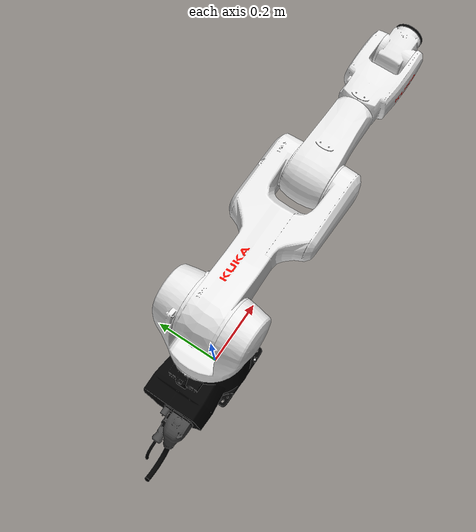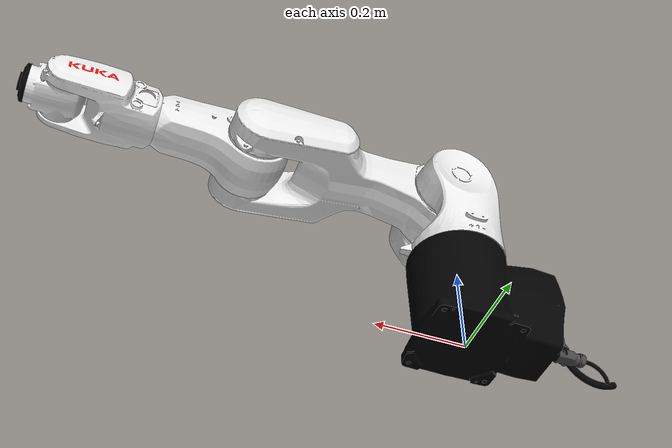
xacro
<?xml version="1.0" encoding="UTF-8"?>
<robot xmlns:xacro="http://ros.org/wiki/xacro" name="kr6_r900_2">
  <!-- Import macro files  -->
  <xacro:include filename="$(find kuka_agilus_support)/urdf/kr6_r900_2_macro.xacro"/>
  <xacro:include filename="$(find kuka_agilus_support)/urdf/kr_agilus_ros2_control_macro.xacro"/>
  <!-- Read additional arguments  -->
  <xacro:arg name="driver_version" default="rsi_only"/>
  <xacro:arg name="mode" default="hardware"/>
  <xacro:arg name="gpio_config" default=""/>
  <xacro:arg name="roundtrip_time" default="0"/>
  <xacro:arg name="client_ip" default="0.0.0.0"/>
  <xacro:arg name="client_port" default="59152"/>
  <xacro:arg name="mxa_client_port" default="1337"/>
  <xacro:arg name="controller_ip" default="0.0.0.0"/>
  <xacro:arg name="verify_robot_model" default="true"/>
  <xacro:arg name="prefix" default=""/>
  <xacro:arg name="x" default="0"/>
  <xacro:arg name="y" default="0"/>
  <xacro:arg name="z" default="0"/>
  <xacro:arg name="roll" default="0"/>
  <xacro:arg name="pitch" default="0"/>
  <xacro:arg name="yaw" default="0"/>
  <xacro:arg name="rsi_xml_config_file" default=""/>
  <xacro:kuka_agilus_ros2_control name="$(arg prefix)kr6_r900_2" driver_version="$(arg driver_version)" client_ip="$(arg client_ip)" client_port="$(arg client_port)" mxa_client_port="$(arg mxa_client_port)" controller_ip="$(arg controller_ip)" prefix="$(arg prefix)" mode="$(arg mode)" gpio_config="$(arg gpio_config)" roundtrip_time="$(arg roundtrip_time)" verify_robot_model="$(arg verify_robot_model)" rsi_xml_config_file="$(arg rsi_xml_config_file)">
    <ext_axes_ros2_control_joints/>
  </xacro:kuka_agilus_ros2_control>
  <!-- world link -->
  <link name="world"/>
  <!-- robot links, joints -->
  <xacro:kuka_kr6_r900_2_robot prefix="$(arg prefix)" package_name="kuka_agilus_support"/>
  <!-- default world - base_link joint -->
  <joint name="$(arg prefix)world-base_link" type="fixed">
    <parent link="world"/>
    <child link="$(arg prefix)base_link"/>
    <origin xyz="$(arg x) $(arg y) $(arg z)" rpy="$(arg roll) $(arg pitch) $(arg yaw)"/>
  </joint>
</robot>

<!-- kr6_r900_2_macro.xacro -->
<robot xmlns:xacro="http://www.ros.org/wiki/xacro" name="kr6_r900_2">
  <xacro:macro name="kuka_kr6_r900_2_robot" params="prefix package_name">
    <link name="${prefix}base"/>
    <link name="${prefix}base_link">
      <collision>
        <geometry>
          <mesh filename="package://${package_name}/meshes/kr6_r900_2/collision/base_link.stl"/>
        </geometry>
        <origin rpy="0.0 0.0 0.0" xyz="0.0 0.0 0.0"/>
      </collision>
      <inertial>
        <inertia ixx="0.1621" ixy="0.0" ixz="0.0" iyy="0.1088" iyz="0.0" izz="0.1846"/>
        <mass value="16.916"/>
        <origin rpy="1.6166 -1.2213 3.1003" xyz="-0.0371 0.0 0.1086"/>
      </inertial>
      <visual>
        <geometry>
          <mesh filename="package://${package_name}/meshes/kr6_r900_2/visual/base_link.dae"/>
        </geometry>
        <origin rpy="0.0 0.0 0.0" xyz="0.0 0.0 0.0"/>
      </visual>
    </link>
    <link name="${prefix}flange"/>
    <link name="${prefix}link_1">
      <collision>
        <geometry>
          <mesh filename="package://${package_name}/meshes/kr6_r900_2/collision/link_1.stl"/>
        </geometry>
        <origin rpy="-3.1415853071795867 0.0 -0.0" xyz="0.0 -1.528053322981866e-06 0.20799999999438715"/>
      </collision>
      <inertial>
        <inertia ixx="0.0741" ixy="0.0" ixz="0.0" iyy="0.089" iyz="0.0" izz="0.1104"/>
        <mass value="8.416"/>
        <origin rpy="1.3045 -0.9429 -1.4227" xyz="0.0064 -0.0163 -0.1066"/>
      </inertial>
      <visual>
        <geometry>
          <mesh filename="package://${package_name}/meshes/kr6_r900_2/visual/link_1.dae"/>
        </geometry>
        <origin rpy="-3.1415853071795867 0.0 -0.0" xyz="0.0 -1.528053322981866e-06 0.20799999999438715"/>
      </visual>
    </link>
    <link name="${prefix}link_2">
      <collision>
        <geometry>
          <mesh filename="package://${package_name}/meshes/kr6_r900_2/collision/link_2.stl"/>
        </geometry>
        <origin rpy="1.5708 4.70197740325743e-38 1.5707963267948966" xyz="-0.39999966683759874 -0.024999999999999977 -0.09069994122810648"/>
      </collision>
      <inertial>
        <inertia ixx="0.5483" ixy="0.0" ixz="0.0" iyy="0.0872" iyz="0.0" izz="0.5885"/>
        <mass value="16.7929"/>
        <origin rpy="1.8411 -1.5374 -0.2834" xyz="0.1474 -0.0045 -0.0737"/>
      </inertial>
      <visual>
        <geometry>
          <mesh filename="package://${package_name}/meshes/kr6_r900_2/visual/link_2.dae"/>
        </geometry>
        <origin rpy="1.5708 4.70197740325743e-38 1.5707963267948966" xyz="-0.39999966683759874 -0.024999999999999977 -0.09069994122810648"/>
      </visual>
    </link>
    <link name="${prefix}link_3">
      <collision>
        <geometry>
          <mesh filename="package://${package_name}/meshes/kr6_r900_2/collision/link_3.stl"/>
        </geometry>
        <origin rpy="1.5708 -0.0 -0.0" xyz="-0.02500000000000003 0.8549996668375988 -0.08649994122810648"/>
      </collision>
      <inertial>
        <inertia ixx="0.0426" ixy="0.0" ixz="0.0" iyy="0.0189" iyz="0.0" izz="0.0478"/>
        <mass value="5.988"/>
        <origin rpy="-2.6751 -1.3259 1.1947" xyz="0.0417 -0.0123 -0.068"/>
      </inertial>
      <visual>
        <geometry>
          <mesh filename="package://${package_name}/meshes/kr6_r900_2/visual/link_3.dae"/>
        </geometry>
        <origin rpy="1.5708 -0.0 -0.0" xyz="-0.02500000000000003 0.8549996668375988 -0.08649994122810648"/>
      </visual>
    </link>
    <link name="${prefix}link_4">
      <collision>
        <geometry>
          <mesh filename="package://${package_name}/meshes/kr6_r900_2/collision/link_4.stl"/>
        </geometry>
        <origin rpy="-2.3561908169838683 1.570791132098422 -2.356194490195718" xyz="-0.8799988550533341 8.705620946852126e-07 0.2210032324160695"/>
      </collision>
      <inertial>
        <inertia ixx="0.0105" ixy="0.0" ixz="0.0" iyy="0.0442" iyz="0.0" izz="0.0472"/>
        <mass value="4.6999"/>
        <origin rpy="-2.3301 -1.5211 2.286" xyz="0.0014 0.0094 -0.0816"/>
      </inertial>
      <visual>
        <geometry>
          <mesh filename="package://${package_name}/meshes/kr6_r900_2/visual/link_4.dae"/>
        </geometry>
        <origin rpy="-2.3561908169838683 1.570791132098422 -2.356194490195718" xyz="-0.8799988550533341 8.705620946852126e-07 0.2210032324160695"/>
      </visual>
    </link>
    <link name="${prefix}link_5">
      <collision>
        <geometry>
          <mesh filename="package://${package_name}/meshes/kr6_r900_2/collision/link_5.stl"/>
        </geometry>
        <origin rpy="1.5708036732051034 -1.3492460511333462e-11 3.673218595765785e-06" xyz="-0.44500304693128084 0.8799990405410575 -0.05049753160908297"/>
      </collision>
      <inertial>
        <inertia ixx="0.0017" ixy="0.0" ixz="0.0" iyy="0.0022" iyz="0.0" izz="0.0025"/>
        <mass value="1.6128"/>
        <origin rpy="1.5679 -0.8612 -3.1003" xyz="0.0093 0.0008 -0.0265"/>
      </inertial>
      <visual>
        <geometry>
          <mesh filename="package://${package_name}/meshes/kr6_r900_2/visual/link_5.dae"/>
        </geometry>
        <origin rpy="1.5708036732051034 -1.3492460511333462e-11 3.673218595765785e-06" xyz="-0.44500304693128084 0.8799990405410575 -0.05049753160908297"/>
      </visual>
    </link>
    <link name="${prefix}link_6">
      <collision>
        <geometry>
          <mesh filename="package://${package_name}/meshes/kr6_r900_2/collision/link_6.stl"/>
        </geometry>
        <origin rpy="-2.6779399020961754 1.5707881132525563 -2.6779472485198745" xyz="-0.879997180045544 4.3288923671780846e-06 0.5065062793323466"/>
      </collision>
      <inertial>
        <inertia ixx="0.0002" ixy="0.0" ixz="0.0" iyy="0.0002" iyz="0.0" izz="0.0003"/>
        <mass value="0.734"/>
        <origin rpy="0.0 0.0 1.2234" xyz="0.0 0.0 -0.0118"/>
      </inertial>
      <visual>
        <geometry>
          <mesh filename="package://${package_name}/meshes/kr6_r900_2/visual/link_6.dae"/>
        </geometry>
        <origin rpy="-2.6779399020961754 1.5707881132525563 -2.6779472485198745" xyz="-0.879997180045544 4.3288923671780846e-06 0.5065062793323466"/>
      </visual>
    </link>
    <link name="${prefix}tool0"/>
    <joint name="${prefix}base_link-base" type="fixed">
      <child link="${prefix}base"/>
      <origin rpy="0.0 0.0 0.0" xyz="0.0 0.0 0.0"/>
      <parent link="${prefix}base_link"/>
    </joint>
    <joint name="${prefix}joint_1" type="revolute">
      <axis xyz="0.0 0.0 1.0"/>
      <child link="${prefix}link_1"/>
      <limit effort="334.8" lower="-2.9671" upper="2.9671" velocity="6.2832"/>
      <origin rpy="-3.1416 0.0 0.0" xyz="0.0 0.0 0.208"/>
      <parent link="${prefix}base_link"/>
    </joint>
    <joint name="${prefix}joint_2" type="revolute">
      <axis xyz="0.0 0.0 1.0"/>
      <child link="${prefix}link_2"/>
      <limit effort="260.6565" lower="-3.3161" upper="0.7854" velocity="5.236"/>
      <origin rpy="1.5708 0.0 0.0" xyz="0.025 -0.0907 -0.192"/>
      <parent link="${prefix}link_1"/>
    </joint>
    <joint name="${prefix}joint_3" type="revolute">
      <axis xyz="0.0 0.0 1.0"/>
      <child link="${prefix}link_3"/>
      <limit effort="137.8274" lower="-2.0944" upper="2.7227" velocity="6.2832"/>
      <origin rpy="0.0 0.0 0.0" xyz="0.455 0.0 -0.0042"/>
      <parent link="${prefix}link_2"/>
    </joint>
    <joint name="${prefix}joint_4" type="revolute">
      <axis xyz="0.0 0.0 1.0"/>
      <child link="${prefix}link_4"/>
      <limit effort="43.2821" lower="-3.2289" upper="3.2289" velocity="7.854"/>
      <origin rpy="1.5708 0.0 -1.5708" xyz="0.196 -0.025 -0.0865"/>
      <parent link="${prefix}link_3"/>
    </joint>
    <joint name="${prefix}joint_5" type="revolute">
      <axis xyz="0.0 0.0 1.0"/>
      <child link="${prefix}link_5"/>
      <limit effort="45.6696" lower="-2.0944" upper="2.0944" velocity="7.854"/>
      <origin rpy="0.0 1.5708 1.5708" xyz="0.0 0.0505 -0.224"/>
      <parent link="${prefix}link_4"/>
    </joint>
    <joint name="${prefix}joint_6" type="revolute">
      <axis xyz="0.0 0.0 1.0"/>
      <child link="${prefix}link_6"/>
      <limit effort="23.2939" lower="-6.1087" upper="6.1087" velocity="9.4248"/>
      <origin rpy="1.5708 0.0 -1.5708" xyz="0.0615 0.0 -0.0505"/>
      <parent link="${prefix}link_5"/>
    </joint>
    <joint name="${prefix}link_6-flange" type="fixed">
      <child link="${prefix}flange"/>
      <origin rpy="0.0 1.5708 0.0" xyz="0.0 0.0 -0.0285"/>
      <parent link="${prefix}link_6"/>
    </joint>
    <joint name="${prefix}link_6-tool0" type="fixed">
      <child link="${prefix}tool0"/>
      <origin rpy="3.1416 -0.0 3.1416" xyz="0.0 0.0 -0.0285"/>
      <parent link="${prefix}link_6"/>
    </joint>
  </xacro:macro>
</robot>
